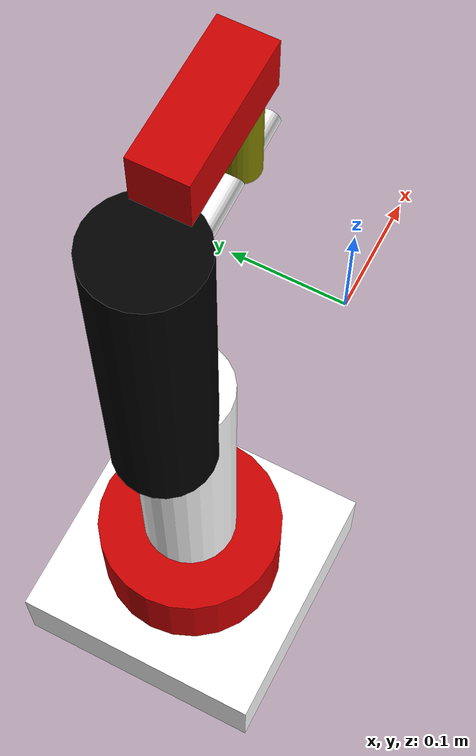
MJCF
<mujoco model="dobot_arm">
    <compiler angle="radian" />
    <size njmax="500" nconmax="100" />
    <worldbody>
        <body name="base_dummy_link" pos="-0.25 0 0">
            <inertial pos="0 0 0" mass="0" diaginertia="0 0 0" />
            <body name="base_link" pos="0 0 0">
                <inertial pos="0 0 0" quat="0.707107 0.707107 0 0" mass=".5" diaginertia="1 1 0.5" />
                <geom size="0.084 0.084 0.0275" pos="0 0 0.0275" type="box" rgba="1 1 1 1" />
                <body name="shoulder_link" pos="0 0 0.0425">
                    <inertial pos="0 0 0" quat="0.707107 0.707107 0 0" mass=".1" diaginertia="1 1 0.5" />
                    <joint name="shoulder_joint" pos="0 0 0" axis="0 0 1" limited="true" range="-2.35619 2.35619" />
                    <geom size="0.06 0.0325" pos="0 0 0.0425" type="cylinder" rgba="0.8 0 0 1" />
                    <body name="bigarm_link" pos="0 0 0.109">
                        <inertial pos="0 0 0" quat="0.707107 0.707107 0 0" mass=".1" diaginertia="1 1 0.5" />
                        <joint name="bigarm_joint" pos="0 0 0" axis="0 1 0" limited="true" range="0 1.48353" />
                        <geom size="0.03 0.1" pos="0 0 0.0675" type="cylinder" rgba="1 1 1 1" />
                        <body name="forearm_link" pos="0.015 0 0.14">
                            <inertial pos="0 0 0" quat="0.707107 0.707107 0 0" mass=".1" diaginertia="1 1 0.5" />
                            <joint name="forearm_joint" pos="0 0 0" axis="0 1 0" limited="true" range="0.270796 2.8708" />
                            <geom size="0.03 0.105" pos="-0.035 0 0.0935" type="cylinder" rgba="0 0 0 1" />
                            <body name="fake_link" pos="0 0 0.21">
                                <inertial pos="0 0 0" quat="0.707107 0.707107 0 0" mass=".1" diaginertia="1 1 0.5" />
                                <joint name="fake_joint" pos="0 0 0" axis="0 1 0" limited="true" range="-2.8708 0.270796" />
                                <geom size="0.04 0.015 0.015" pos="0.02 0 0.0115" type="box" rgba="0.8 0 0 1" />
                                <body name="chuck_link" pos="0.05 0 0.0405">
                                    <inertial pos="0 0 0" quat="0.707107 0.707107 0 0" mass=".1" diaginertia="1 1 0.5" />
                                    <joint name="chuck_joint" pos="0 0 0" axis="0 0 1" limited="true" range="-2.36 2.36" />
                                    <geom size="0.01 0.035" pos="0.005 0 -0.075" type="cylinder" rgba="0.5 0.5 0 1" />
                                    <body name="endeffector" pos="0 0 -0.11" quat="0.968912 0 0.247404 0">
                                        <inertial pos="0 0 0" quat="0.707107 0.707107 0 0" mass=".1" diaginertia="1 1 0.5" />
                                        <geom size="0.0055 0.035" quat="0.877583 0 0.479426 0" type="cylinder" rgba="1 1 1 1" />
                                    </body>
                                </body>
                            </body>
                        </body>
                    </body>
                </body>
            </body>
        </body>
    </worldbody>
    <actuator>
		<position name="shoulder_position" joint="shoulder_joint" ctrllimited='false'/>
		<position name="bigarm_position" joint="bigarm_joint" ctrllimited='false'/>
        <position name="forearm_position" joint="forearm_joint" ctrllimited='false'/>
        <position name="fake_joint_position" joint="fake_joint" ctrllimited='false'/>
        <position name="chuck_position" joint="chuck_joint" ctrllimited='false'/>
        <velocity name="shoulder_velocity" joint="shoulder_joint"/>
		<velocity name="bigarm_velocity" joint="bigarm_joint"/>
        <velocity name="forearm_velocity" joint="forearm_joint"/>
        <velocity name="fake_joint_velocity" joint="fake_joint"/>
        <velocity name="chuck_velocity" joint="chuck_joint"/>
	</actuator>
</mujoco>
